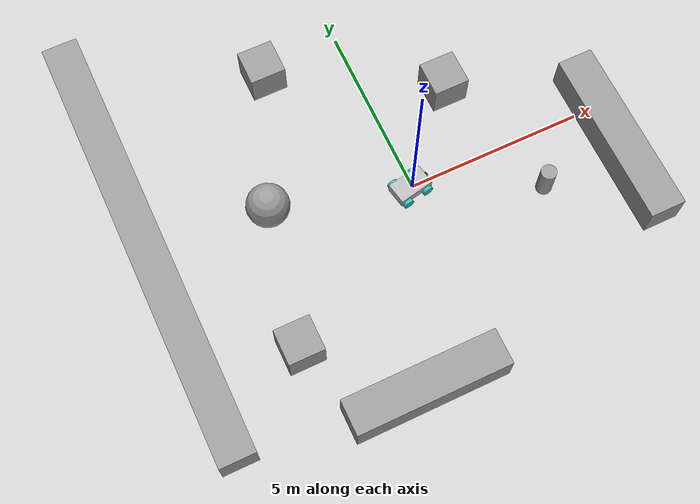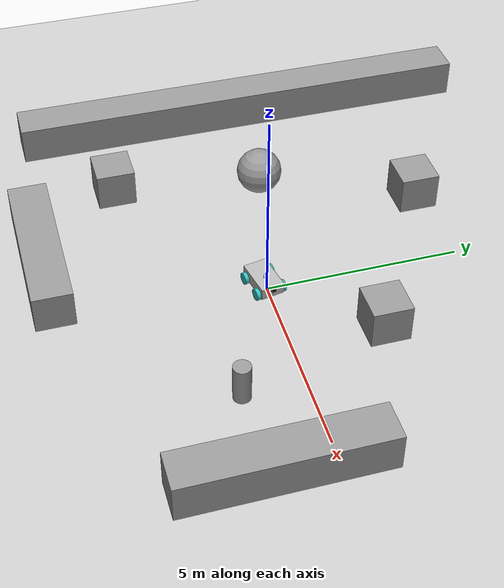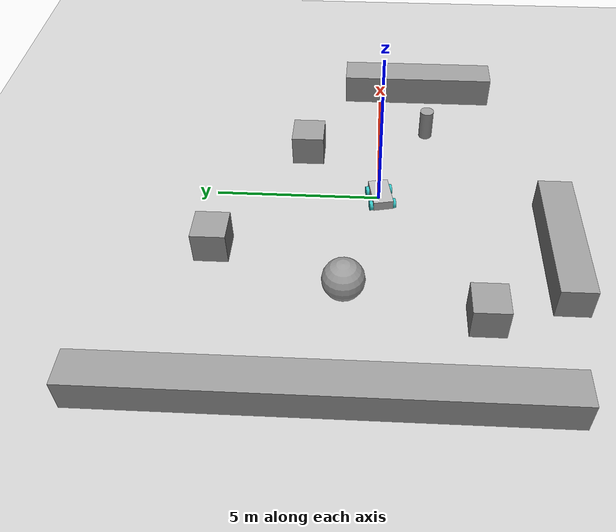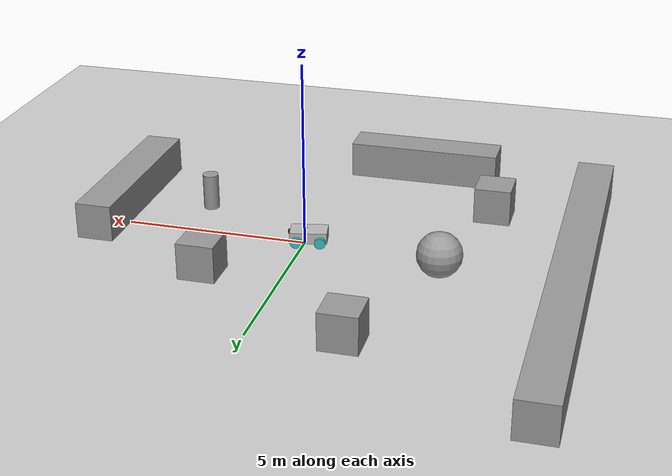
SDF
<sdf version="1.7">
 <world name="default">
  <light name="sun" type="directional">
   <pose>0 0 10 0 -0 0</pose>
   <diffuse>0.8 0.8 0.8 1</diffuse>
   <specular>0.2 0.2 0.2 1</specular>
   <attenuation>
    <range>1000</range>
    <constant>0.9</constant>
    <linear>0.01</linear>
    <quadratic>0.001</quadratic>
   </attenuation>
   <direction>-0.5 0.1 -0.9</direction>
   <spot><inner_angle>0</inner_angle><outer_angle>0</outer_angle><falloff>0</falloff></spot>
  </light>
  <model name="ground_plane">
   <static>1</static>
   <link name="link">
    <collision name="collision">
     <geometry><plane><normal>0 0 1</normal><size>100 100</size></plane></geometry>
     <surface>
      <contact><collide_bitmask>65535</collide_bitmask></contact>
      <friction><ode><mu>100</mu><mu2>50</mu2></ode></friction>
     </surface>
    </collision>
    <visual name="visual">
     <cast_shadows>0</cast_shadows>
     <geometry><plane><normal>0 0 1</normal><size>100 100</size></plane></geometry>
     <material>
      <script><uri>file://media/materials/scripts/gazebo.material</uri><name>Gazebo/Grey</name></script>
     </material>
    </visual>
   </link>
  </model>
  <gravity>0 0 -9.8</gravity>
  <magnetic_field>6e-06 2.3e-05 -4.2e-05</magnetic_field>
  <atmosphere type="adiabatic"/>
  <physics type="ode">
   <max_step_size>0.001</max_step_size>
   <real_time_factor>1</real_time_factor>
   <real_time_update_rate>1000</real_time_update_rate>
  </physics>
  <scene><ambient>0.4 0.4 0.4 1</ambient><background>0.7 0.7 0.7 1</background><shadows>1</shadows></scene>
  <spherical_coordinates>
   <surface_model>EARTH_WGS84</surface_model>
   <latitude_deg>0</latitude_deg>
   <longitude_deg>0</longitude_deg>
   <elevation>0</elevation>
   <heading_deg>0</heading_deg>
  </spherical_coordinates>
  <model name="unit_box">
   <pose>-2.34165 4.74066 0.5 0 -0 0</pose>
   <link name="link">
    <inertial>
     <mass>1</mass>
     <inertia>
      <ixx>0.166667</ixx>
      <ixy>0</ixy>
      <ixz>0</ixz>
      <iyy>0.166667</iyy>
      <iyz>0</iyz>
      <izz>0.166667</izz>
     </inertia>
    </inertial>
    <collision name="collision"><geometry><box><size>1 1 1</size></box></geometry></collision>
    <visual name="visual">
     <geometry><box><size>1 1 1</size></box></geometry>
     <material>
      <script><name>Gazebo/Grey</name><uri>file://media/materials/scripts/gazebo.material</uri></script>
     </material>
    </visual>
   </link>
  </model>
  <model name="unit_box_0">
   <pose>2.04282 2.30361 0.5 0 -0 0</pose>
   <link name="link">
    <inertial>
     <mass>1</mass>
     <inertia>
      <ixx>0.166667</ixx>
      <ixy>0</ixy>
      <ixz>0</ixz>
      <iyy>0.166667</iyy>
      <iyz>0</iyz>
      <izz>0.166667</izz>
     </inertia>
    </inertial>
    <collision name="collision"><geometry><box><size>1 1 1</size></box></geometry></collision>
    <visual name="visual">
     <geometry><box><size>1 1 1</size></box></geometry>
     <material>
      <script><name>Gazebo/Grey</name><uri>file://media/materials/scripts/gazebo.material</uri></script>
     </material>
    </visual>
   </link>
  </model>
  <model name="unit_box_1">
   <pose>-4.63298 -2.90543 0.5 0 -0 0</pose>
   <link name="link">
    <inertial>
     <mass>1</mass>
     <inertia>
      <ixx>0.166667</ixx>
      <ixy>0</ixy>
      <ixz>0</ixz>
      <iyy>0.166667</iyy>
      <iyz>0</iyz>
      <izz>0.166667</izz>
     </inertia>
    </inertial>
    <collision name="collision"><geometry><box><size>1 1 1</size></box></geometry></collision>
    <visual name="visual">
     <geometry><box><size>1 1 1</size></box></geometry>
     <material>
      <script><name>Gazebo/Grey</name><uri>file://media/materials/scripts/gazebo.material</uri></script>
     </material>
    </visual>
   </link>
  </model>
  <model name="unit_box_2">
   <pose>-2.21296 -5.21149 0.499997 -6e-06 -0 1.2e-05</pose>
   <link name="link">
    <inertial>
     <mass>1</mass>
     <inertia>
      <ixx>0.166667</ixx>
      <ixy>0</ixy>
      <ixz>0</ixz>
      <iyy>0.166667</iyy>
      <iyz>0</iyz>
      <izz>0.166667</izz>
     </inertia>
    </inertial>
    <collision name="collision"><geometry><box><size>4.27662 1 1</size></box></geometry></collision>
    <visual name="visual">
     <geometry><box><size>4.27662 1 1</size></box></geometry>
     <material>
      <script><name>Gazebo/Grey</name><uri>file://media/materials/scripts/gazebo.material</uri></script>
     </material>
    </visual>
   </link>
  </model>
  <model name="unit_box_3">
   <pose>-7.18387 1.2871 0.499997 -0 -5e-06 -0.000711</pose>
   <link name="link">
    <inertial>
     <mass>1</mass>
     <inertia>
      <ixx>0.166667</ixx>
      <ixy>0</ixy>
      <ixz>0</ixz>
      <iyy>0.166667</iyy>
      <iyz>0</iyz>
      <izz>0.166667</izz>
     </inertia>
    </inertial>
    <collision name="collision"><geometry><box><size>1 12.6188 1</size></box></geometry></collision>
    <visual name="visual">
     <geometry><box><size>1 12.6188 1</size></box></geometry>
     <material>
      <script><name>Gazebo/Grey</name><uri>file://media/materials/scripts/gazebo.material</uri></script>
     </material>
    </visual>
   </link>
  </model>
  <model name="robot_model">
   <link name="dummy">
    <inertial>
     <pose>0.000102 0 1.4e-05 0 -0 0</pose>
     <mass>487.9</mass>
     <inertia>
      <ixx>18.294</ixx>
      <ixy>0</ixy>
      <ixz>-0.00349928</ixz>
      <iyy>44.335</iyy>
      <iyz>0</iyz>
      <izz>55.31</izz>
     </inertia>
    </inertial>
    <collision name="dummy_fixed_joint_lump__base_link_collision">
     <geometry><box><size>1 0.6 0.3</size></box></geometry>
    </collision>
    <collision name="dummy_fixed_joint_lump__camera_link_collision_1">
     <pose>0.5 0 0.07 0 -0 0</pose>
     <geometry><box><size>0.1 0.1 0.1</size></box></geometry>
    </collision>
    <collision name="dummy_fixed_joint_lump__laser_frame_collision_2">
     <pose>0.1 0 0.175 0 -0 0</pose>
     <geometry><cylinder><length>0.04</length><radius>0.05</radius></cylinder></geometry>
    </collision>
    <visual name="dummy_fixed_joint_lump__base_link_visual">
     <geometry><box><size>1 0.6 0.3</size></box></geometry>
    </visual>
    <visual name="dummy_fixed_joint_lump__camera_link_visual_1">
     <pose>0.5 0 0.07 0 -0 0</pose>
     <geometry><box><size>0.1 0.1 0.1</size></box></geometry>
     <material>
      <script><name>Gazebo/Black</name><uri>file://media/materials/scripts/gazebo.material</uri></script>
     </material>
    </visual>
    <visual name="dummy_fixed_joint_lump__laser_frame_visual_2">
     <pose>0.1 0 0.175 0 -0 0</pose>
     <geometry><cylinder><length>0.04</length><radius>0.05</radius></cylinder></geometry>
    </visual>
    <sensor name="camera_sensor" type="camera">
     <update_rate>30</update_rate>
     <camera name="head">
      <horizontal_fov>1.39626</horizontal_fov>
      <image><width>800</width><height>800</height><format>R8G8B8</format></image>
      <clip><near>0.02</near><far>300</far></clip>
      <noise><type>gaussian</type><mean>0</mean><stddev>0.007</stddev></noise>
     </camera>
     <plugin name="camera_controller" filename="libgazebo_ros_camera.so">
      <always_on>1</always_on>
      <update_rate>30.0</update_rate>
      <camera_name>camera</camera_name>
      <imageTopicName>image_raw</imageTopicName>
      <cameraInfoTopicName>camera_info</cameraInfoTopicName>
      <frameName>camera_link</frameName>
      <hackBaseline>0.07</hackBaseline>
      <distortionK1>0.0</distortionK1>
      <distortionK2>0.0</distortionK2>
      <distortionK3>0.0</distortionK3>
      <distortionT1>0.0</distortionT1>
      <distortionT2>0.0</distortionT2>
      <robotNamespace>/</robotNamespace>
     </plugin>
     <pose>0.5 0 0.07 0 -0 0</pose>
    </sensor>
    <sensor name="laser" type="ray">
     <visualize>1</visualize>
     <update_rate>10</update_rate>
     <ray>
      <scan>
       <horizontal>
        <samples>360</samples>
        <resolution>1</resolution>
        <min_angle>-3.14</min_angle>
        <max_angle>3.14</max_angle>
       </horizontal>
       <vertical><samples>1</samples><min_angle>0</min_angle><max_angle>0</max_angle></vertical>
      </scan>
      <range><min>0.3</min><max>12</max></range>
     </ray>
     <plugin name="laser_controller" filename="libgazebo_ros_laser.so">
      <topicName>/scan</topicName>
      <frameName>laser_frame</frameName>
      <robotNamespace>/</robotNamespace>
     </plugin>
     <pose>0.1 0 0.175 0 -0 0</pose>
    </sensor>
   </link>
   <joint name="wheel1_joint" type="revolute">
    <pose relative_to="dummy">-0.32 -0.35 -0.1 0 -0 0</pose>
    <parent>dummy</parent>
    <child>wheel1_link</child>
    <axis>
     <xyz>0 1 0</xyz>
     <limit><effort>1000</effort><velocity>1000</velocity><lower>-1e+16</lower><upper>1e+16</upper></limit>
     <dynamics>
      <damping>1</damping>
      <friction>1</friction>
      <spring_reference>0</spring_reference>
      <spring_stiffness>0</spring_stiffness>
     </dynamics>
    </axis>
   </joint>
   <link name="wheel1_link">
    <pose relative_to="wheel1_joint">0 0 0 0 -0 0</pose>
    <inertial>
     <mass>19.1559</mass>
     <inertia>
      <ixx>0.123715</ixx>
      <ixy>0</ixy>
      <ixz>0</ixz>
      <iyy>0.123715</iyy>
      <iyz>0</iyz>
      <izz>0.215503</izz>
     </inertia>
    </inertial>
    <collision name="wheel1_link_collision">
     <pose>0 0 0 1.57079 -0 0</pose>
     <geometry><cylinder><length>0.1</length><radius>0.15</radius></cylinder></geometry>
     <surface><friction><ode><mu>0.2</mu><mu2>0.2</mu2></ode></friction></surface>
    </collision>
    <visual name="wheel1_link_visual">
     <pose>0 0 0 1.57079 -0 0</pose>
     <geometry><cylinder><length>0.1</length><radius>0.15</radius></cylinder></geometry>
     <material>
      <script><name>Gazebo/Turquoise</name><uri>file://media/materials/scripts/gazebo.material</uri></script>
     </material>
    </visual>
   </link>
   <joint name="wheel2_joint" type="revolute">
    <pose relative_to="dummy">-0.32 0.35 -0.1 0 -0 0</pose>
    <parent>dummy</parent>
    <child>wheel2_link</child>
    <axis>
     <xyz>0 1 0</xyz>
     <limit><effort>1000</effort><velocity>1000</velocity><lower>-1e+16</lower><upper>1e+16</upper></limit>
     <dynamics>
      <damping>1</damping>
      <friction>1</friction>
      <spring_reference>0</spring_reference>
      <spring_stiffness>0</spring_stiffness>
     </dynamics>
    </axis>
   </joint>
   <link name="wheel2_link">
    <pose relative_to="wheel2_joint">0 0 0 0 -0 0</pose>
    <inertial>
     <mass>19.1559</mass>
     <inertia>
      <ixx>0.123715</ixx>
      <ixy>0</ixy>
      <ixz>0</ixz>
      <iyy>0.123715</iyy>
      <iyz>0</iyz>
      <izz>0.215503</izz>
     </inertia>
    </inertial>
    <collision name="wheel2_link_collision">
     <pose>0 0 0 1.57079 -0 0</pose>
     <geometry><cylinder><length>0.1</length><radius>0.15</radius></cylinder></geometry>
     <surface><friction><ode><mu>0.2</mu><mu2>0.2</mu2></ode></friction></surface>
    </collision>
    <visual name="wheel2_link_visual">
     <pose>0 0 0 1.57079 -0 0</pose>
     <geometry><cylinder><length>0.1</length><radius>0.15</radius></cylinder></geometry>
     <material>
      <script><name>Gazebo/Turquoise</name><uri>file://media/materials/scripts/gazebo.material</uri></script>
     </material>
    </visual>
   </link>
   <joint name="wheel3_joint" type="revolute">
    <pose relative_to="dummy">0.32 -0.35 -0.1 0 -0 0</pose>
    <parent>dummy</parent>
    <child>wheel3_link</child>
    <axis>
     <xyz>0 1 0</xyz>
     <limit><effort>1000</effort><velocity>1000</velocity><lower>-1e+16</lower><upper>1e+16</upper></limit>
     <dynamics>
      <damping>1</damping>
      <friction>1</friction>
      <spring_reference>0</spring_reference>
      <spring_stiffness>0</spring_stiffness>
     </dynamics>
    </axis>
   </joint>
   <link name="wheel3_link">
    <pose relative_to="wheel3_joint">0 0 0 0 -0 0</pose>
    <inertial>
     <mass>19.1559</mass>
     <inertia>
      <ixx>0.123715</ixx>
      <ixy>0</ixy>
      <ixz>0</ixz>
      <iyy>0.123715</iyy>
      <iyz>0</iyz>
      <izz>0.215503</izz>
     </inertia>
    </inertial>
    <collision name="wheel3_link_collision">
     <pose>0 0 0 1.57079 -0 0</pose>
     <geometry><cylinder><length>0.1</length><radius>0.15</radius></cylinder></geometry>
     <surface><friction><ode><mu>0.2</mu><mu2>0.2</mu2></ode></friction></surface>
    </collision>
    <visual name="wheel3_link_visual">
     <pose>0 0 0 1.57079 -0 0</pose>
     <geometry><cylinder><length>0.1</length><radius>0.15</radius></cylinder></geometry>
     <material>
      <script><name>Gazebo/Turquoise</name><uri>file://media/materials/scripts/gazebo.material</uri></script>
     </material>
    </visual>
   </link>
   <joint name="wheel4_joint" type="revolute">
    <pose relative_to="dummy">0.32 0.35 -0.1 0 -0 0</pose>
    <parent>dummy</parent>
    <child>wheel4_link</child>
    <axis>
     <xyz>0 1 0</xyz>
     <limit><effort>1000</effort><velocity>1000</velocity><lower>-1e+16</lower><upper>1e+16</upper></limit>
     <dynamics>
      <damping>1</damping>
      <friction>1</friction>
      <spring_reference>0</spring_reference>
      <spring_stiffness>0</spring_stiffness>
     </dynamics>
    </axis>
   </joint>
   <link name="wheel4_link">
    <pose relative_to="wheel4_joint">0 0 0 0 -0 0</pose>
    <inertial>
     <mass>19.1559</mass>
     <inertia>
      <ixx>0.123715</ixx>
      <ixy>0</ixy>
      <ixz>0</ixz>
      <iyy>0.123715</iyy>
      <iyz>0</iyz>
      <izz>0.215503</izz>
     </inertia>
    </inertial>
    <collision name="wheel4_link_collision">
     <pose>0 0 0 1.57079 -0 0</pose>
     <geometry><cylinder><length>0.1</length><radius>0.15</radius></cylinder></geometry>
     <surface><friction><ode><mu>0.2</mu><mu2>0.2</mu2></ode></friction></surface>
    </collision>
    <visual name="wheel4_link_visual">
     <pose>0 0 0 1.57079 -0 0</pose>
     <geometry><cylinder><length>0.1</length><radius>0.15</radius></cylinder></geometry>
     <material>
      <script><name>Gazebo/Turquoise</name><uri>file://media/materials/scripts/gazebo.material</uri></script>
     </material>
    </visual>
   </link>
   <static>0</static>
   <plugin name="skid_steer_drive_controller" filename="libgazebo_ros_skid_steer_drive.so">
    <updateRate>100.0</updateRate>
    <leftFrontJoint>wheel4_joint</leftFrontJoint>
    <rightFrontJoint>wheel3_joint</rightFrontJoint>
    <leftRearJoint>wheel2_joint</leftRearJoint>
    <rightRearJoint>wheel1_joint</rightRearJoint>
    <wheelSeparation>0.7</wheelSeparation>
    <wheelDiameter>0.3</wheelDiameter>
    <torque>1000</torque>
    <commandTopic>cmd_vel</commandTopic>
    <odometryTopic>odom</odometryTopic>
    <odometryFrame>odom</odometryFrame>
    <robotBaseFrame>base_link</robotBaseFrame>
    <publishOdometryTF>1</publishOdometryTF>
    <publishWheelTF>1</publishWheelTF>
    <broadcastTF>1</broadcastTF>
    <publishWheelJointState>1</publishWheelJointState>
    <covariance_x>0.0001</covariance_x>
    <covariance_y>0.0001</covariance_y>
    <covariance_yaw>0.01</covariance_yaw>
   </plugin>
   <pose>-0.107312 -0.051207 0.25 1e-06 1e-06 0.193862</pose>
  </model>
  <model name="unit_box_4">
   <pose>5.51721 -1.2741 0.497847 0.000859 0 -1.2e-05</pose>
   <link name="link">
    <inertial>
     <mass>1</mass>
     <inertia>
      <ixx>0.166667</ixx>
      <ixy>0</ixy>
      <ixz>0</ixz>
      <iyy>0.166667</iyy>
      <iyz>0</iyz>
      <izz>0.166667</izz>
     </inertia>
    </inertial>
    <collision name="collision"><geometry><box><size>1 5.01612 1</size></box></geometry></collision>
    <visual name="visual">
     <geometry><box><size>1 5.01612 1</size></box></geometry>
     <material>
      <script><name>Gazebo/Grey</name><uri>file://media/materials/scripts/gazebo.material</uri></script>
     </material>
    </visual>
   </link>
  </model>
  <model name="unit_sphere">
   <pose>-3.83874 0.918024 0.59843 0 -0 0</pose>
   <link name="link">
    <inertial>
     <mass>1</mass>
     <inertia><ixx>0.1</ixx><ixy>0</ixy><ixz>0</ixz><iyy>0.1</iyy><iyz>0</iyz><izz>0.1</izz></inertia>
    </inertial>
    <collision name="collision"><geometry><sphere><radius>0.59843</radius></sphere></geometry></collision>
    <visual name="visual">
     <geometry><sphere><radius>0.59843</radius></sphere></geometry>
     <material>
      <script><name>Gazebo/Grey</name><uri>file://media/materials/scripts/gazebo.material</uri></script>
     </material>
    </visual>
   </link>
  </model>
  <model name="unit_cylinder">
   <pose>3.20106 -1.52765 0.499996 0 -0 2e-06</pose>
   <link name="link">
    <inertial>
     <mass>1</mass>
     <inertia><ixx>0.145833</ixx><ixy>0</ixy><ixz>0</ixz><iyy>0.145833</iyy><iyz>0</iyz><izz>0.125</izz></inertia>
    </inertial>
    <collision name="collision">
     <geometry><cylinder><radius>0.218136</radius><length>1</length></cylinder></geometry>
    </collision>
    <visual name="visual">
     <geometry><cylinder><radius>0.218136</radius><length>1</length></cylinder></geometry>
     <material>
      <script><name>Gazebo/Grey</name><uri>file://media/materials/scripts/gazebo.material</uri></script>
     </material>
    </visual>
   </link>
  </model>
 </world>
</sdf>
